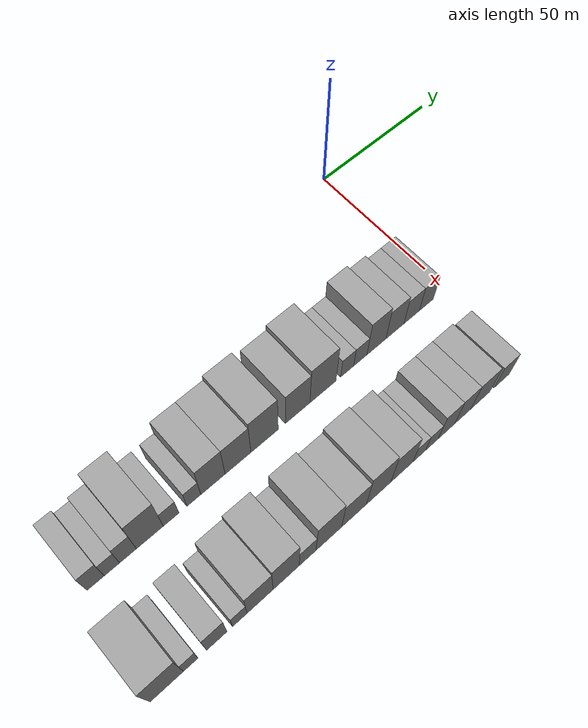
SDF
<sdf version="1.6">
 <world name="default">
  <model name="building_19">
   <static>1</static>
   <pose>50.0000 -144.2925 0 0.000000 0.000000 0.000000</pose>
   <link name="link">
    <pose>0 0 7.50 0 0 0</pose>
    <collision name="collision"><geometry><box><size>20.0000 6.0666 15.0000</size></box></geometry></collision>
    <visual name="visual">
     <cast_shadows>0</cast_shadows>
     <geometry><box><size>20.0000 6.0666 15.0000</size></box></geometry>
     <material>
      <script>
       <uri>model://grey_wall/materials/scripts</uri>
       <uri>model://grey_wall/materials/textures</uri>
       <name>vrc/grey_wall</name>
      </script>
     </material>
    </visual>
   </link>
  </model>
  <model name="building_20">
   <static>1</static>
   <pose>50.0000 -138.5595 0 0.000000 0.000000 0.000000</pose>
   <link name="link">
    <pose>0 0 6.00 0 0 0</pose>
    <collision name="collision"><geometry><box><size>20.0000 5.3994 12.0000</size></box></geometry></collision>
    <visual name="visual">
     <cast_shadows>0</cast_shadows>
     <geometry><box><size>20.0000 5.3994 12.0000</size></box></geometry>
     <material>
      <script>
       <uri>model://grey_wall/materials/scripts</uri>
       <uri>model://grey_wall/materials/textures</uri>
       <name>vrc/grey_wall</name>
      </script>
     </material>
    </visual>
   </link>
  </model>
  <model name="building_21">
   <static>1</static>
   <pose>50.0000 -132.8455 0 0.000000 0.000000 0.000000</pose>
   <link name="link">
    <pose>0 0 7.50 0 0 0</pose>
    <collision name="collision"><geometry><box><size>20.0000 6.0286 15.0000</size></box></geometry></collision>
    <visual name="visual">
     <cast_shadows>0</cast_shadows>
     <geometry><box><size>20.0000 6.0286 15.0000</size></box></geometry>
     <material>
      <script>
       <uri>model://grey_wall/materials/scripts</uri>
       <uri>model://grey_wall/materials/textures</uri>
       <name>vrc/grey_wall</name>
      </script>
     </material>
    </visual>
   </link>
  </model>
  <model name="building_22">
   <static>1</static>
   <pose>50.0000 -124.9020 0 0.000000 0.000000 0.000000</pose>
   <link name="link">
    <pose>0 0 12.00 0 0 0</pose>
    <collision name="collision"><geometry><box><size>20.0000 9.8583 24.0000</size></box></geometry></collision>
    <visual name="visual">
     <cast_shadows>0</cast_shadows>
     <geometry><box><size>20.0000 9.8583 24.0000</size></box></geometry>
     <material>
      <script>
       <uri>model://grey_wall/materials/scripts</uri>
       <uri>model://grey_wall/materials/textures</uri>
       <name>vrc/grey_wall</name>
      </script>
     </material>
    </visual>
   </link>
  </model>
  <model name="building_23">
   <static>1</static>
   <pose>50.0000 -117.0329 0 0.000000 0.000000 0.000000</pose>
   <link name="link">
    <pose>0 0 6.00 0 0 0</pose>
    <collision name="collision"><geometry><box><size>20.0000 5.8799 12.0000</size></box></geometry></collision>
    <visual name="visual">
     <cast_shadows>0</cast_shadows>
     <geometry><box><size>20.0000 5.8799 12.0000</size></box></geometry>
     <material>
      <script>
       <uri>model://grey_wall/materials/scripts</uri>
       <uri>model://grey_wall/materials/textures</uri>
       <name>vrc/grey_wall</name>
      </script>
     </material>
    </visual>
   </link>
  </model>
  <model name="building_24">
   <static>1</static>
   <pose>50.0000 -108.4351 0 0.000000 0.000000 0.000000</pose>
   <link name="link">
    <pose>0 0 6.00 0 0 0</pose>
    <collision name="collision"><geometry><box><size>20.0000 5.3156 12.0000</size></box></geometry></collision>
    <visual name="visual">
     <cast_shadows>0</cast_shadows>
     <geometry><box><size>20.0000 5.3156 12.0000</size></box></geometry>
     <material>
      <script>
       <uri>model://grey_wall/materials/scripts</uri>
       <uri>model://grey_wall/materials/textures</uri>
       <name>vrc/grey_wall</name>
      </script>
     </material>
    </visual>
   </link>
  </model>
  <model name="building_25">
   <static>1</static>
   <pose>50.0000 -101.0850 0 0.000000 0.000000 0.000000</pose>
   <link name="link">
    <pose>0 0 10.50 0 0 0</pose>
    <collision name="collision"><geometry><box><size>20.0000 9.3847 21.0000</size></box></geometry></collision>
    <visual name="visual">
     <cast_shadows>0</cast_shadows>
     <geometry><box><size>20.0000 9.3847 21.0000</size></box></geometry>
     <material>
      <script>
       <uri>model://grey_wall/materials/scripts</uri>
       <uri>model://grey_wall/materials/textures</uri>
       <name>vrc/grey_wall</name>
      </script>
     </material>
    </visual>
   </link>
  </model>
  <model name="building_26">
   <static>1</static>
   <pose>50.0000 -91.2807 0 0.000000 0.000000 0.000000</pose>
   <link name="link">
    <pose>0 0 10.50 0 0 0</pose>
    <collision name="collision"><geometry><box><size>20.0000 10.2239 21.0000</size></box></geometry></collision>
    <visual name="visual">
     <cast_shadows>0</cast_shadows>
     <geometry><box><size>20.0000 10.2239 21.0000</size></box></geometry>
     <material>
      <script>
       <uri>model://grey_wall/materials/scripts</uri>
       <uri>model://grey_wall/materials/textures</uri>
       <name>vrc/grey_wall</name>
      </script>
     </material>
    </visual>
   </link>
  </model>
  <model name="building_27">
   <static>1</static>
   <pose>50.0000 -80.6186 0 0.000000 0.000000 0.000000</pose>
   <link name="link">
    <pose>0 0 12.00 0 0 0</pose>
    <collision name="collision"><geometry><box><size>20.0000 11.1003 24.0000</size></box></geometry></collision>
    <visual name="visual">
     <cast_shadows>0</cast_shadows>
     <geometry><box><size>20.0000 11.1003 24.0000</size></box></geometry>
     <material>
      <script>
       <uri>model://grey_wall/materials/scripts</uri>
       <uri>model://grey_wall/materials/textures</uri>
       <name>vrc/grey_wall</name>
      </script>
     </material>
    </visual>
   </link>
  </model>
  <model name="building_28">
   <static>1</static>
   <pose>50.0000 -66.9657 0 0.000000 0.000000 0.000000</pose>
   <link name="link">
    <pose>0 0 10.50 0 0 0</pose>
    <collision name="collision"><geometry><box><size>20.0000 10.2054 21.0000</size></box></geometry></collision>
    <visual name="visual">
     <cast_shadows>0</cast_shadows>
     <geometry><box><size>20.0000 10.2054 21.0000</size></box></geometry>
     <material>
      <script>
       <uri>model://grey_wall/materials/scripts</uri>
       <uri>model://grey_wall/materials/textures</uri>
       <name>vrc/grey_wall</name>
      </script>
     </material>
    </visual>
   </link>
  </model>
  <model name="building_29">
   <static>1</static>
   <pose>50.0000 -56.2812 0 0.000000 0.000000 0.000000</pose>
   <link name="link">
    <pose>0 0 12.00 0 0 0</pose>
    <collision name="collision"><geometry><box><size>20.0000 11.1637 24.0000</size></box></geometry></collision>
    <visual name="visual">
     <cast_shadows>0</cast_shadows>
     <geometry><box><size>20.0000 11.1637 24.0000</size></box></geometry>
     <material>
      <script>
       <uri>model://grey_wall/materials/scripts</uri>
       <uri>model://grey_wall/materials/textures</uri>
       <name>vrc/grey_wall</name>
      </script>
     </material>
    </visual>
   </link>
  </model>
  <model name="building_30">
   <static>1</static>
   <pose>50.0000 -45.8224 0 0.000000 0.000000 0.000000</pose>
   <link name="link">
    <pose>0 0 6.00 0 0 0</pose>
    <collision name="collision"><geometry><box><size>20.0000 5.7540 12.0000</size></box></geometry></collision>
    <visual name="visual">
     <cast_shadows>0</cast_shadows>
     <geometry><box><size>20.0000 5.7540 12.0000</size></box></geometry>
     <material>
      <script>
       <uri>model://grey_wall/materials/scripts</uri>
       <uri>model://grey_wall/materials/textures</uri>
       <name>vrc/grey_wall</name>
      </script>
     </material>
    </visual>
   </link>
  </model>
  <model name="building_31">
   <static>1</static>
   <pose>50.0000 -40.0100 0 0.000000 0.000000 0.000000</pose>
   <link name="link">
    <pose>0 0 6.00 0 0 0</pose>
    <collision name="collision"><geometry><box><size>20.0000 5.8707 12.0000</size></box></geometry></collision>
    <visual name="visual">
     <cast_shadows>0</cast_shadows>
     <geometry><box><size>20.0000 5.8707 12.0000</size></box></geometry>
     <material>
      <script>
       <uri>model://grey_wall/materials/scripts</uri>
       <uri>model://grey_wall/materials/textures</uri>
       <name>vrc/grey_wall</name>
      </script>
     </material>
    </visual>
   </link>
  </model>
  <model name="building_32">
   <static>1</static>
   <pose>50.0000 -32.7911 0 0.000000 0.000000 0.000000</pose>
   <link name="link">
    <pose>0 0 10.50 0 0 0</pose>
    <collision name="collision"><geometry><box><size>20.0000 8.5672 21.0000</size></box></geometry></collision>
    <visual name="visual">
     <cast_shadows>0</cast_shadows>
     <geometry><box><size>20.0000 8.5672 21.0000</size></box></geometry>
     <material>
      <script>
       <uri>model://grey_wall/materials/scripts</uri>
       <uri>model://grey_wall/materials/textures</uri>
       <name>vrc/grey_wall</name>
      </script>
     </material>
    </visual>
   </link>
  </model>
  <model name="building_33">
   <static>1</static>
   <pose>50.0000 -24.3727 0 0.000000 0.000000 0.000000</pose>
   <link name="link">
    <pose>0 0 9.00 0 0 0</pose>
    <collision name="collision"><geometry><box><size>20.0000 8.2696 18.0000</size></box></geometry></collision>
    <visual name="visual">
     <cast_shadows>0</cast_shadows>
     <geometry><box><size>20.0000 8.2696 18.0000</size></box></geometry>
     <material>
      <script>
       <uri>model://grey_wall/materials/scripts</uri>
       <uri>model://grey_wall/materials/textures</uri>
       <name>vrc/grey_wall</name>
      </script>
     </material>
    </visual>
   </link>
  </model>
  <model name="building_34">
   <static>1</static>
   <pose>50.0000 -16.6368 0 0.000000 0.000000 0.000000</pose>
   <link name="link">
    <pose>0 0 7.50 0 0 0</pose>
    <collision name="collision"><geometry><box><size>20.0000 7.2022 15.0000</size></box></geometry></collision>
    <visual name="visual">
     <cast_shadows>0</cast_shadows>
     <geometry><box><size>20.0000 7.2022 15.0000</size></box></geometry>
     <material>
      <script>
       <uri>model://grey_wall/materials/scripts</uri>
       <uri>model://grey_wall/materials/textures</uri>
       <name>vrc/grey_wall</name>
      </script>
     </material>
    </visual>
   </link>
  </model>
  <model name="building_35">
   <static>1</static>
   <pose>50.0000 -9.7083 0 0.000000 0.000000 0.000000</pose>
   <link name="link">
    <pose>0 0 7.50 0 0 0</pose>
    <collision name="collision"><geometry><box><size>20.0000 6.6549 15.0000</size></box></geometry></collision>
    <visual name="visual">
     <cast_shadows>0</cast_shadows>
     <geometry><box><size>20.0000 6.6549 15.0000</size></box></geometry>
     <material>
      <script>
       <uri>model://grey_wall/materials/scripts</uri>
       <uri>model://grey_wall/materials/textures</uri>
       <name>vrc/grey_wall</name>
      </script>
     </material>
    </visual>
   </link>
  </model>
  <model name="building_84">
   <static>1</static>
   <pose>85.0000 -146.2024 0 0.000000 0.000000 0.000000</pose>
   <link name="link">
    <pose>0 0 12.00 0 0 0</pose>
    <collision name="collision"><geometry><box><size>20.0000 11.4736 24.0000</size></box></geometry></collision>
    <visual name="visual">
     <cast_shadows>0</cast_shadows>
     <geometry><box><size>20.0000 11.4736 24.0000</size></box></geometry>
     <material>
      <script>
       <uri>model://grey_wall/materials/scripts</uri>
       <uri>model://grey_wall/materials/textures</uri>
       <name>vrc/grey_wall</name>
      </script>
     </material>
    </visual>
   </link>
  </model>
  <model name="building_85">
   <static>1</static>
   <pose>85.0000 -137.9275 0 0.000000 0.000000 0.000000</pose>
   <link name="link">
    <pose>0 0 6.00 0 0 0</pose>
    <collision name="collision"><geometry><box><size>20.0000 5.0762 12.0000</size></box></geometry></collision>
    <visual name="visual">
     <cast_shadows>0</cast_shadows>
     <geometry><box><size>20.0000 5.0762 12.0000</size></box></geometry>
     <material>
      <script>
       <uri>model://grey_wall/materials/scripts</uri>
       <uri>model://grey_wall/materials/textures</uri>
       <name>vrc/grey_wall</name>
      </script>
     </material>
    </visual>
   </link>
  </model>
  <model name="building_86">
   <static>1</static>
   <pose>85.0000 -128.7155 0 0.000000 0.000000 0.000000</pose>
   <link name="link">
    <pose>0 0 9.00 0 0 0</pose>
    <collision name="collision"><geometry><box><size>20.0000 7.3477 18.0000</size></box></geometry></collision>
    <visual name="visual">
     <cast_shadows>0</cast_shadows>
     <geometry><box><size>20.0000 7.3477 18.0000</size></box></geometry>
     <material>
      <script>
       <uri>model://grey_wall/materials/scripts</uri>
       <uri>model://grey_wall/materials/textures</uri>
       <name>vrc/grey_wall</name>
      </script>
     </material>
    </visual>
   </link>
  </model>
  <model name="building_87">
   <static>1</static>
   <pose>85.0000 -120.3929 0 0.000000 0.000000 0.000000</pose>
   <link name="link">
    <pose>0 0 6.00 0 0 0</pose>
    <collision name="collision"><geometry><box><size>20.0000 5.2977 12.0000</size></box></geometry></collision>
    <visual name="visual">
     <cast_shadows>0</cast_shadows>
     <geometry><box><size>20.0000 5.2977 12.0000</size></box></geometry>
     <material>
      <script>
       <uri>model://grey_wall/materials/scripts</uri>
       <uri>model://grey_wall/materials/textures</uri>
       <name>vrc/grey_wall</name>
      </script>
     </material>
    </visual>
   </link>
  </model>
  <model name="building_88">
   <static>1</static>
   <pose>85.0000 -112.9138 0 0.000000 0.000000 0.000000</pose>
   <link name="link">
    <pose>0 0 10.50 0 0 0</pose>
    <collision name="collision"><geometry><box><size>20.0000 9.6604 21.0000</size></box></geometry></collision>
    <visual name="visual">
     <cast_shadows>0</cast_shadows>
     <geometry><box><size>20.0000 9.6604 21.0000</size></box></geometry>
     <material>
      <script>
       <uri>model://grey_wall/materials/scripts</uri>
       <uri>model://grey_wall/materials/textures</uri>
       <name>vrc/grey_wall</name>
      </script>
     </material>
    </visual>
   </link>
  </model>
  <model name="building_89">
   <static>1</static>
   <pose>85.0000 -103.1183 0 0.000000 0.000000 0.000000</pose>
   <link name="link">
    <pose>0 0 12.00 0 0 0</pose>
    <collision name="collision"><geometry><box><size>20.0000 9.9305 24.0000</size></box></geometry></collision>
    <visual name="visual">
     <cast_shadows>0</cast_shadows>
     <geometry><box><size>20.0000 9.9305 24.0000</size></box></geometry>
     <material>
      <script>
       <uri>model://grey_wall/materials/scripts</uri>
       <uri>model://grey_wall/materials/textures</uri>
       <name>vrc/grey_wall</name>
      </script>
     </material>
    </visual>
   </link>
  </model>
  <model name="building_90">
   <static>1</static>
   <pose>85.0000 -94.8995 0 0.000000 0.000000 0.000000</pose>
   <link name="link">
    <pose>0 0 7.50 0 0 0</pose>
    <collision name="collision"><geometry><box><size>20.0000 6.5071 15.0000</size></box></geometry></collision>
    <visual name="visual">
     <cast_shadows>0</cast_shadows>
     <geometry><box><size>20.0000 6.5071 15.0000</size></box></geometry>
     <material>
      <script>
       <uri>model://grey_wall/materials/scripts</uri>
       <uri>model://grey_wall/materials/textures</uri>
       <name>vrc/grey_wall</name>
      </script>
     </material>
    </visual>
   </link>
  </model>
  <model name="building_91">
   <static>1</static>
   <pose>85.0000 -86.5533 0 0.000000 0.000000 0.000000</pose>
   <link name="link">
    <pose>0 0 12.00 0 0 0</pose>
    <collision name="collision"><geometry><box><size>20.0000 10.1855 24.0000</size></box></geometry></collision>
    <visual name="visual">
     <cast_shadows>0</cast_shadows>
     <geometry><box><size>20.0000 10.1855 24.0000</size></box></geometry>
     <material>
      <script>
       <uri>model://grey_wall/materials/scripts</uri>
       <uri>model://grey_wall/materials/textures</uri>
       <name>vrc/grey_wall</name>
      </script>
     </material>
    </visual>
   </link>
  </model>
  <model name="building_92">
   <static>1</static>
   <pose>85.0000 -76.4142 0 0.000000 0.000000 0.000000</pose>
   <link name="link">
    <pose>0 0 10.50 0 0 0</pose>
    <collision name="collision"><geometry><box><size>20.0000 10.0926 21.0000</size></box></geometry></collision>
    <visual name="visual">
     <cast_shadows>0</cast_shadows>
     <geometry><box><size>20.0000 10.0926 21.0000</size></box></geometry>
     <material>
      <script>
       <uri>model://grey_wall/materials/scripts</uri>
       <uri>model://grey_wall/materials/textures</uri>
       <name>vrc/grey_wall</name>
      </script>
     </material>
    </visual>
   </link>
  </model>
  <model name="building_93">
   <static>1</static>
   <pose>85.0000 -66.3062 0 0.000000 0.000000 0.000000</pose>
   <link name="link">
    <pose>0 0 12.00 0 0 0</pose>
    <collision name="collision"><geometry><box><size>20.0000 10.1236 24.0000</size></box></geometry></collision>
    <visual name="visual">
     <cast_shadows>0</cast_shadows>
     <geometry><box><size>20.0000 10.1236 24.0000</size></box></geometry>
     <material>
      <script>
       <uri>model://grey_wall/materials/scripts</uri>
       <uri>model://grey_wall/materials/textures</uri>
       <name>vrc/grey_wall</name>
      </script>
     </material>
    </visual>
   </link>
  </model>
  <model name="building_94">
   <static>1</static>
   <pose>85.0000 -56.5176 0 0.000000 0.000000 0.000000</pose>
   <link name="link">
    <pose>0 0 10.50 0 0 0</pose>
    <collision name="collision"><geometry><box><size>20.0000 9.4535 21.0000</size></box></geometry></collision>
    <visual name="visual">
     <cast_shadows>0</cast_shadows>
     <geometry><box><size>20.0000 9.4535 21.0000</size></box></geometry>
     <material>
      <script>
       <uri>model://grey_wall/materials/scripts</uri>
       <uri>model://grey_wall/materials/textures</uri>
       <name>vrc/grey_wall</name>
      </script>
     </material>
    </visual>
   </link>
  </model>
  <model name="building_95">
   <static>1</static>
   <pose>85.0000 -49.0352 0 0.000000 0.000000 0.000000</pose>
   <link name="link">
    <pose>0 0 6.00 0 0 0</pose>
    <collision name="collision"><geometry><box><size>20.0000 5.5114 12.0000</size></box></geometry></collision>
    <visual name="visual">
     <cast_shadows>0</cast_shadows>
     <geometry><box><size>20.0000 5.5114 12.0000</size></box></geometry>
     <material>
      <script>
       <uri>model://grey_wall/materials/scripts</uri>
       <uri>model://grey_wall/materials/textures</uri>
       <name>vrc/grey_wall</name>
      </script>
     </material>
    </visual>
   </link>
  </model>
  <model name="building_96">
   <static>1</static>
   <pose>85.0000 -43.5820 0 0.000000 0.000000 0.000000</pose>
   <link name="link">
    <pose>0 0 6.00 0 0 0</pose>
    <collision name="collision"><geometry><box><size>20.0000 5.3950 12.0000</size></box></geometry></collision>
    <visual name="visual">
     <cast_shadows>0</cast_shadows>
     <geometry><box><size>20.0000 5.3950 12.0000</size></box></geometry>
     <material>
      <script>
       <uri>model://grey_wall/materials/scripts</uri>
       <uri>model://grey_wall/materials/textures</uri>
       <name>vrc/grey_wall</name>
      </script>
     </material>
    </visual>
   </link>
  </model>
  <model name="building_97">
   <static>1</static>
   <pose>85.0000 -37.1915 0 0.000000 0.000000 0.000000</pose>
   <link name="link">
    <pose>0 0 9.00 0 0 0</pose>
    <collision name="collision"><geometry><box><size>20.0000 7.3859 18.0000</size></box></geometry></collision>
    <visual name="visual">
     <cast_shadows>0</cast_shadows>
     <geometry><box><size>20.0000 7.3859 18.0000</size></box></geometry>
     <material>
      <script>
       <uri>model://grey_wall/materials/scripts</uri>
       <uri>model://grey_wall/materials/textures</uri>
       <name>vrc/grey_wall</name>
      </script>
     </material>
    </visual>
   </link>
  </model>
  <model name="building_98">
   <static>1</static>
   <pose>85.0000 -29.8182 0 0.000000 0.000000 0.000000</pose>
   <link name="link">
    <pose>0 0 9.00 0 0 0</pose>
    <collision name="collision"><geometry><box><size>20.0000 7.3609 18.0000</size></box></geometry></collision>
    <visual name="visual">
     <cast_shadows>0</cast_shadows>
     <geometry><box><size>20.0000 7.3609 18.0000</size></box></geometry>
     <material>
      <script>
       <uri>model://grey_wall/materials/scripts</uri>
       <uri>model://grey_wall/materials/textures</uri>
       <name>vrc/grey_wall</name>
      </script>
     </material>
    </visual>
   </link>
  </model>
  <model name="building_99">
   <static>1</static>
   <pose>85.0000 -21.7149 0 0.000000 0.000000 0.000000</pose>
   <link name="link">
    <pose>0 0 9.00 0 0 0</pose>
    <collision name="collision"><geometry><box><size>20.0000 8.8457 18.0000</size></box></geometry></collision>
    <visual name="visual">
     <cast_shadows>0</cast_shadows>
     <geometry><box><size>20.0000 8.8457 18.0000</size></box></geometry>
     <material>
      <script>
       <uri>model://grey_wall/materials/scripts</uri>
       <uri>model://grey_wall/materials/textures</uri>
       <name>vrc/grey_wall</name>
      </script>
     </material>
    </visual>
   </link>
  </model>
  <model name="building_100">
   <static>1</static>
   <pose>85.0000 -11.7125 0 0.000000 0.000000 0.000000</pose>
   <link name="link">
    <pose>0 0 7.50 0 0 0</pose>
    <collision name="collision"><geometry><box><size>20.0000 7.1592 15.0000</size></box></geometry></collision>
    <visual name="visual">
     <cast_shadows>0</cast_shadows>
     <geometry><box><size>20.0000 7.1592 15.0000</size></box></geometry>
     <material>
      <script>
       <uri>model://grey_wall/materials/scripts</uri>
       <uri>model://grey_wall/materials/textures</uri>
       <name>vrc/grey_wall</name>
      </script>
     </material>
    </visual>
   </link>
  </model>
 </world>
</sdf>
